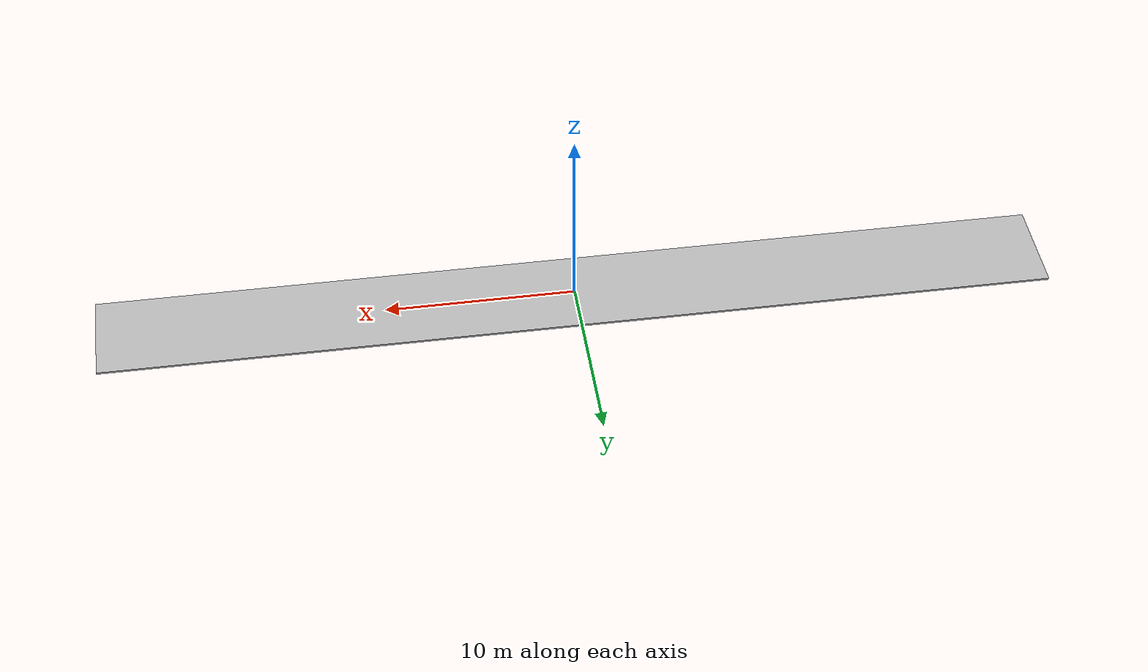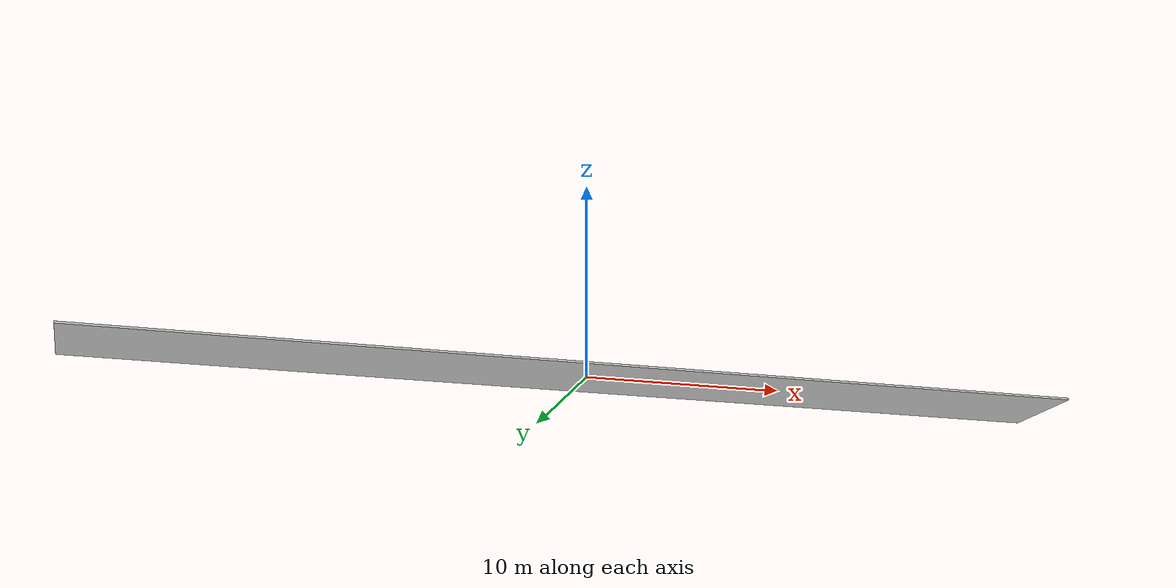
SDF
<?xml version="1.0" ?>
<sdf version="1.6">
  <model name="straight_road_50_4">
    <pose>0 0 0 0 0 0</pose>
    <static>true</static>
    <link name="link">
      <inertial>
        <pose>0 0 0 0 0 0</pose>
        <mass>1</mass>
        <inertia>
          <ixx>1</ixx>
          <iyy>1</iyy>
          <izz>1</izz>
          <ixy>0</ixy>
          <ixz>0</ixz>
        </inertia>
      </inertial>
      <visual name="visual">
        <geometry>
          <mesh>
            <uri>model://straight_road_50_4/meshes/straight_road_50.dae</uri>
          </mesh>
        </geometry>
      </visual>
      <collision name="collision">
        <geometry>
          <mesh>
            <uri>model://straight_road_50_4/meshes/straight_road_50.dae</uri>
          </mesh>
        </geometry>
      </collision>
    </link>
  </model>
</sdf>
